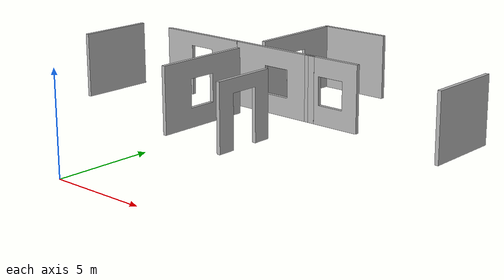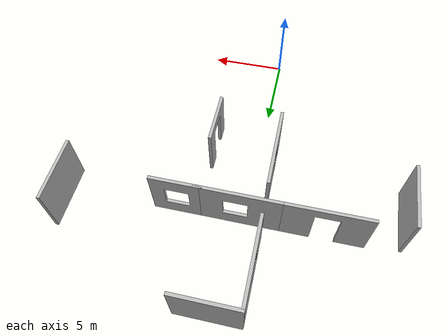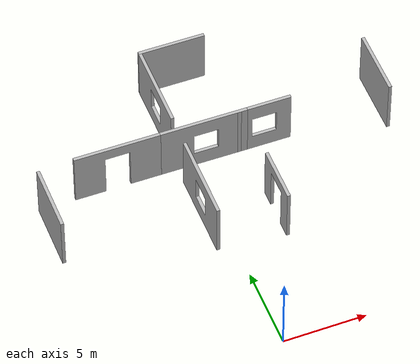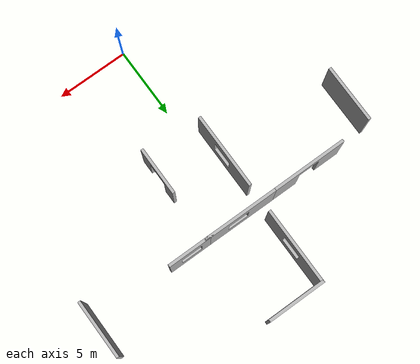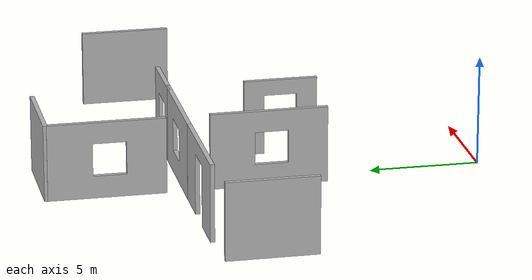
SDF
<sdf version="1.5">
 <world name="default">
  <include><uri>model://sun</uri></include>
  <include>
   <name>wall_w_win_1</name>
   <uri>model://house_scene_1_wall_w_window</uri>
   <static>true</static>
   <pose>-2.222210 10.732579 0 0 0 1.567493</pose>
  </include>
  <include>
   <name>wall_w_win_2</name>
   <uri>model://house_scene_1_wall_w_window</uri>
   <static>true</static>
   <pose>-3.958748 12.639949 0 0 0 0</pose>
  </include>
  <include>
   <name>wall_w_win_3</name>
   <uri>model://house_scene_1_wall_w_window</uri>
   <static>true</static>
   <pose>-3.960691 19.887342 0 0 0 0</pose>
  </include>
  <include>
   <name>wall_w_door_1</name>
   <uri>model://house_scene_1_wall_w_door</uri>
   <static>true</static>
   <pose>-5.386255 9.582332 0 0 0 0</pose>
  </include>
  <include>
   <name>wall_1</name>
   <uri>model://house_scene_1_wall</uri>
   <static>true</static>
   <pose>0.821740 7.332443 0 0 0 0</pose>
  </include>
  <include>
   <name>wall_2</name>
   <uri>model://house_scene_1_wall</uri>
   <static>true</static>
   <pose>-1.037633 14.302383 0 0 0 -1.570796</pose>
  </include>
  <include>
   <name>wall_5</name>
   <uri>model://house_scene_1_wall</uri>
   <static>true</static>
   <pose>3.026288 11.437896 0 0 0 1.570840</pose>
  </include>
  <include>
   <name>wall_w_door_small_1</name>
   <uri>model://house_scene_1_wall_w_door_small</uri>
   <static>true</static>
   <pose>3.024304 8.495412 0 0 0 1.570796</pose>
  </include>
  <include>
   <name>wall_w_win_small_1</name>
   <uri>model://house_scene_1_wall_w_window_small</uri>
   <static>true</static>
   <pose>4.171270 13.632973 0 0 0 0</pose>
  </include>
 </world>
</sdf>

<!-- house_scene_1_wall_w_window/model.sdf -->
<sdf version="1.5">
    <model name="house3">
        <static>true</static>
        <link name="link">
            <collision name="collision1">
                <pose>0 0 0 0 0 0</pose>
                <geometry>
                    <mesh>
                        <uri>model://house_scene_1_wall_w_window/meshes/scene_1_wall_w_window.dae</uri>
                    </mesh>
                </geometry>
            </collision>
            <visual name="visual_walls3">
              <pose>0 0 0 0 0 0</pose>
              <geometry>
              <mesh>
                 <uri>model://house_scene_1_wall_w_window/meshes/scene_1_wall_w_window.dae</uri>
              </mesh>
              </geometry>
              <material>
                  <script>
                      <uri>model://house_scene_1_wall_w_window/materials/scripts</uri>
                      <uri>model://house_scene_1_wall_w_window/materials/textures</uri>
                      <name>houseMat/Diffuse</name>
                  </script>
              </material>
             </visual>

        </link>
    </model>
</sdf>

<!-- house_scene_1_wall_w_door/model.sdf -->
<sdf version="1.5">
    <model name="house2">
        <static>true</static>
        <link name="link">
            <collision name="collision1">
                <pose>0 0 0 0 0 0</pose>
                <geometry>
                    <mesh>
                        <uri>model://house_scene_1_wall_w_door/meshes/scene_1_wall_w_door.dae</uri>
                    </mesh>
                </geometry>
            </collision>
            <visual name="visual_walls2">
              <pose>0 0 0 0 0 0</pose>
              <geometry>
              <mesh>
                 <uri>model://house_scene_1_wall_w_door/meshes/scene_1_wall_w_door.dae</uri>
              </mesh>
              </geometry>
              <material>
                  <script>
                      <uri>model://house_scene_1_wall_w_door/materials/scripts</uri>
                      <uri>model://house_scene_1_wall_w_door/materials/textures</uri>
                      <name>houseMat/Diffuse</name>
                  </script>
              </material>
             </visual>

        </link>
    </model>
</sdf>

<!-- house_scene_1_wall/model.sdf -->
<sdf version="1.5">
    <model name="house1">
        <static>true</static>
        <link name="link">
            <collision name="collision1">
                <pose>0 12.5 0 0 0 0</pose>
                <geometry>
                    <mesh>
                        <uri>model://house_scene_1_wall/meshes/scene_1_wall.dae</uri>
                    </mesh>
                </geometry>
            </collision>
            <visual name="visual_walls1">
              <pose>0 12.5 0 0 0 0</pose>
              <geometry>
              <mesh>
                 <uri>model://house_scene_1_wall/meshes/scene_1_wall.dae</uri>
              </mesh>
              </geometry>
              <material>
                  <script>
                      <uri>model://house_scene_1_wall/materials/scripts</uri>
                      <uri>model://house_scene_1_wall/materials/textures</uri>
                      <name>houseMat/Diffuse</name>
                  </script>
              </material>
             </visual>

        </link>
    </model>
</sdf>

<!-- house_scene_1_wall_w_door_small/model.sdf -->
<sdf version="1.5">
    <model name="house2_small">
        <static>true</static>
        <link name="link">
            <collision name="collision1">
                <pose>0 0 0 0 0 0</pose>
                <geometry>
                    <mesh>
                        <uri>model://house_scene_1_wall_w_door_small/meshes/scene_1_wall_w_door_small.dae</uri>
                    </mesh>
                </geometry>
            </collision>
            <visual name="visual_walls2">
              <pose>0 0 0 0 0 0</pose>
              <geometry>
              <mesh>
                 <uri>model://house_scene_1_wall_w_door_small/meshes/scene_1_wall_w_door_small.dae</uri>
              </mesh>
              </geometry>
              <material>
                  <script>
                      <uri>model://house_scene_1_wall_w_door_small/materials/scripts</uri>
                      <uri>model://house_scene_1_wall_w_door_small/materials/textures</uri>
                      <name>houseMat/Diffuse</name>
                  </script>
              </material>
             </visual>

        </link>
    </model>
</sdf>

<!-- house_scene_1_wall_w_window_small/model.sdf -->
<sdf version="1.5">
    <model name="house3_small">
        <static>true</static>
        <link name="link">
            <collision name="collision1">
                <pose>0 0 0 0 0 0</pose>
                <geometry>
                    <mesh>
                        <uri>model://house_scene_1_wall_w_window_small/meshes/scene_1_wall_w_window_small.dae</uri>
                    </mesh>
                </geometry>
            </collision>
            <visual name="visual_walls3">
              <pose>0 0 0 0 0 0</pose>
              <geometry>
              <mesh>
                 <uri>model://house_scene_1_wall_w_window_small/meshes/scene_1_wall_w_window_small.dae</uri>
              </mesh>
              </geometry>
              <material>
                  <script>
                      <uri>model://house_scene_1_wall_w_window_small/materials/scripts</uri>
                      <uri>model://house_scene_1_wall_w_window_small/materials/textures</uri>
                      <name>houseMat/Diffuse</name>
                  </script>
              </material>
             </visual>

        </link>
    </model>
</sdf>
